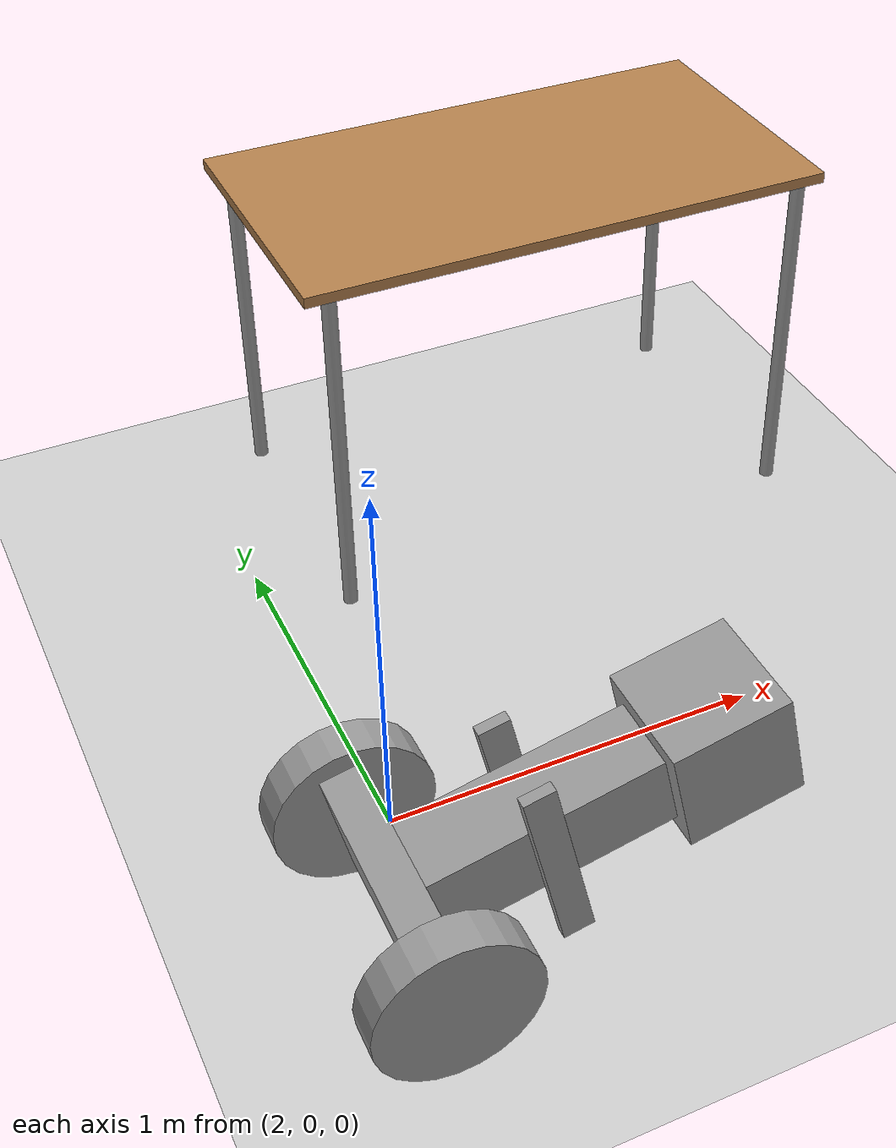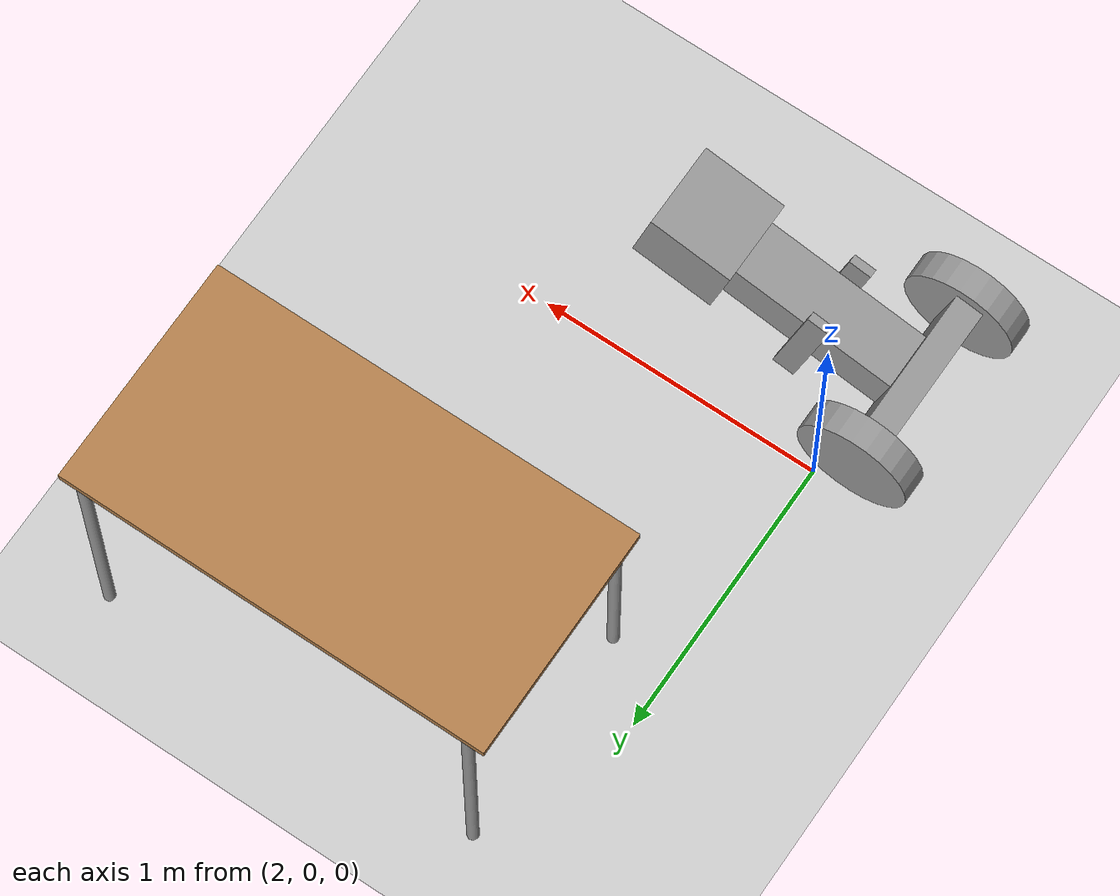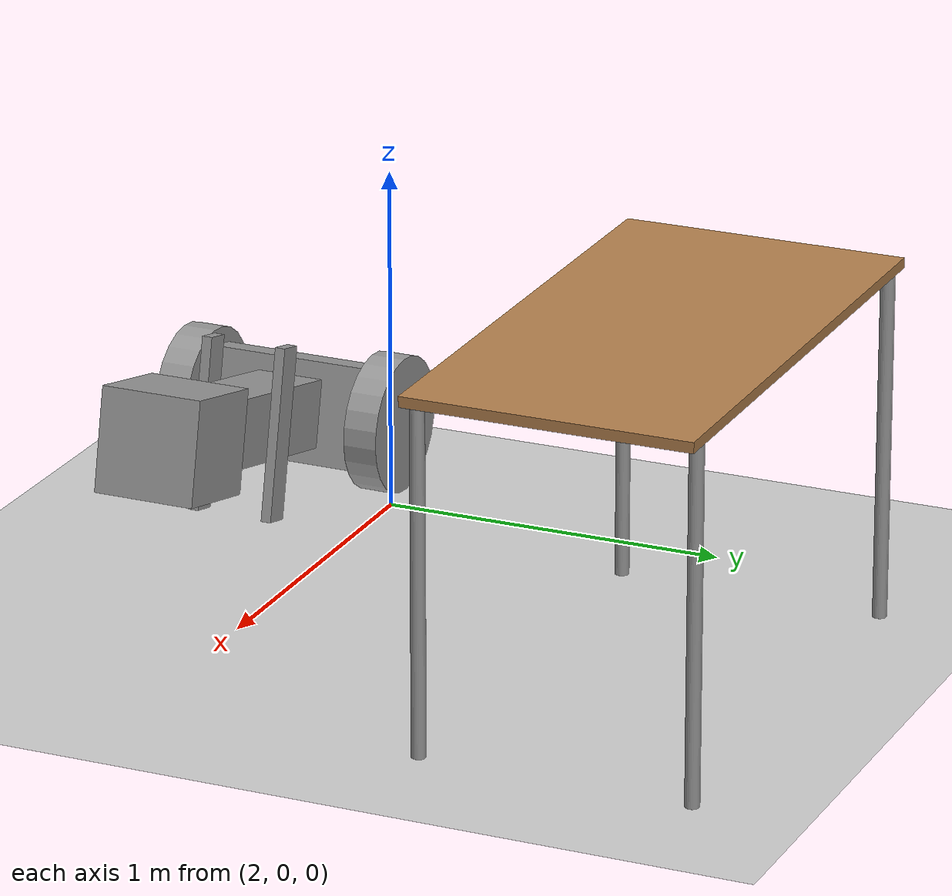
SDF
<sdf version="1.6">
 <world name="default">
  <model name="ground_plane">
   <static>1</static>
   <link name="link">
    <collision name="collision">
     <geometry><plane><normal>0 0 1</normal><size>100 100</size></plane></geometry>
     <surface><friction><ode><mu>100</mu><mu2>50</mu2></ode></friction></surface>
    </collision>
    <visual name="visual">
     <cast_shadows>0</cast_shadows>
     <geometry><plane><normal>0 0 1</normal><size>100 100</size></plane></geometry>
     <material>
      <script><uri>file://media/materials/scripts/gazebo.material</uri><name>Gazebo/Grey</name></script>
     </material>
    </visual>
   </link>
  </model>
  <model name="robot_0">
   <link name="link_0">
    <pose>1.55233 -0.934021 0.2 0 -0 0</pose>
    <inertial>
     <mass>1</mass>
     <inertia>
      <ixx>0.166667</ixx>
      <ixy>0</ixy>
      <ixz>0</ixz>
      <iyy>0.166667</iyy>
      <iyz>0</iyz>
      <izz>0.166667</izz>
     </inertia>
    </inertial>
    <visual name="visual">
     <geometry><box><size>0.3 0.5 0.1</size></box></geometry>
     <material>
      <lighting>1</lighting>
      <script><uri>file://media/materials/scripts/gazebo.material</uri><name>Gazebo/Grey</name></script>
      <shader type="pixel"><normal_map>__default__</normal_map></shader>
      <ambient>0.3 0.3 0.3 1</ambient>
      <diffuse>0.7 0.7 0.7 1</diffuse>
      <specular>0.01 0.01 0.01 1</specular>
      <emissive>0 0 0 1</emissive>
     </material>
    </visual>
    <collision name="collision">
     <geometry><box><size>0.3 0.5 0.1</size></box></geometry>
     <surface>
      <friction>
       <ode><mu>1</mu><mu2>1</mu2><fdir1>0 0 0</fdir1><slip1>0</slip1><slip2>0</slip2></ode>
       <torsional>
        <coefficient>1</coefficient>
        <patch_radius>0</patch_radius>
        <surface_radius>0</surface_radius>
        <use_patch_radius>1</use_patch_radius>
        <ode><slip>0</slip></ode>
       </torsional>
      </friction>
      <bounce><restitution_coefficient>0</restitution_coefficient><threshold>1e+06</threshold></bounce>
      <contact>
       <collide_without_contact>0</collide_without_contact>
       <collide_without_contact_bitmask>1</collide_without_contact_bitmask>
       <collide_bitmask>1</collide_bitmask>
       <ode>
        <soft_cfm>0</soft_cfm>
        <soft_erp>0.2</soft_erp>
        <kp>1e+13</kp>
        <kd>1</kd>
        <max_vel>0.01</max_vel>
        <min_depth>0</min_depth>
       </ode>
       <bullet>
        <split_impulse>1</split_impulse>
        <split_impulse_penetration_threshold>-0.01</split_impulse_penetration_threshold>
        <soft_cfm>0</soft_cfm>
        <soft_erp>0.2</soft_erp>
        <kp>1e+13</kp>
        <kd>1</kd>
       </bullet>
      </contact>
     </surface>
    </collision>
   </link>
   <link name="link_1">
    <pose>1.55233 -1.23404 0.2 1.5707 -0 0</pose>
    <inertial>
     <mass>1</mass>
     <inertia><ixx>0.145833</ixx><ixy>0</ixy><ixz>0</ixz><iyy>0.145833</iyy><iyz>0</iyz><izz>0.125</izz></inertia>
    </inertial>
    <visual name="visual">
     <geometry><cylinder><radius>0.2</radius><length>0.1</length></cylinder></geometry>
     <material>
      <lighting>1</lighting>
      <script><uri>file://media/materials/scripts/gazebo.material</uri><name>Gazebo/Grey</name></script>
      <shader type="pixel"><normal_map>__default__</normal_map></shader>
      <ambient>0.3 0.3 0.3 1</ambient>
      <diffuse>0.7 0.7 0.7 1</diffuse>
      <specular>0.01 0.01 0.01 1</specular>
      <emissive>0 0 0 1</emissive>
     </material>
    </visual>
    <collision name="collision">
     <geometry><cylinder><radius>0.2</radius><length>0.1</length></cylinder></geometry>
     <surface>
      <friction>
       <ode><mu>1</mu><mu2>1</mu2><fdir1>0 0 0</fdir1><slip1>0</slip1><slip2>0</slip2></ode>
       <torsional>
        <coefficient>1</coefficient>
        <patch_radius>0</patch_radius>
        <surface_radius>0</surface_radius>
        <use_patch_radius>1</use_patch_radius>
        <ode><slip>0</slip></ode>
       </torsional>
      </friction>
      <bounce><restitution_coefficient>0</restitution_coefficient><threshold>1e+06</threshold></bounce>
      <contact>
       <collide_without_contact>0</collide_without_contact>
       <collide_without_contact_bitmask>1</collide_without_contact_bitmask>
       <collide_bitmask>1</collide_bitmask>
       <ode>
        <soft_cfm>0</soft_cfm>
        <soft_erp>0.2</soft_erp>
        <kp>1e+13</kp>
        <kd>1</kd>
        <max_vel>0.01</max_vel>
        <min_depth>0</min_depth>
       </ode>
       <bullet>
        <split_impulse>1</split_impulse>
        <split_impulse_penetration_threshold>-0.01</split_impulse_penetration_threshold>
        <soft_cfm>0</soft_cfm>
        <soft_erp>0.2</soft_erp>
        <kp>1e+13</kp>
        <kd>1</kd>
       </bullet>
      </contact>
     </surface>
    </collision>
   </link>
   <link name="link_1_clone">
    <pose>1.55233 -0.634002 0.2 1.5707 -0 0</pose>
    <inertial>
     <mass>1</mass>
     <inertia><ixx>0.145833</ixx><ixy>0</ixy><ixz>0</ixz><iyy>0.145833</iyy><iyz>0</iyz><izz>0.125</izz></inertia>
    </inertial>
    <visual name="visual">
     <geometry><cylinder><radius>0.2</radius><length>0.1</length></cylinder></geometry>
     <material>
      <lighting>1</lighting>
      <script><uri>file://media/materials/scripts/gazebo.material</uri><name>Gazebo/Grey</name></script>
      <shader type="pixel"><normal_map>__default__</normal_map></shader>
      <ambient>0.3 0.3 0.3 1</ambient>
      <diffuse>0.7 0.7 0.7 1</diffuse>
      <specular>0.01 0.01 0.01 1</specular>
      <emissive>0 0 0 1</emissive>
     </material>
    </visual>
    <collision name="collision">
     <geometry><cylinder><radius>0.2</radius><length>0.1</length></cylinder></geometry>
     <surface>
      <friction>
       <ode><mu>1</mu><mu2>1</mu2><fdir1>0 0 0</fdir1><slip1>0</slip1><slip2>0</slip2></ode>
       <torsional>
        <coefficient>1</coefficient>
        <patch_radius>0</patch_radius>
        <surface_radius>0</surface_radius>
        <use_patch_radius>1</use_patch_radius>
        <ode><slip>0</slip></ode>
       </torsional>
      </friction>
      <bounce><restitution_coefficient>0</restitution_coefficient><threshold>1e+06</threshold></bounce>
      <contact>
       <collide_without_contact>0</collide_without_contact>
       <collide_without_contact_bitmask>1</collide_without_contact_bitmask>
       <collide_bitmask>1</collide_bitmask>
       <ode>
        <soft_cfm>0</soft_cfm>
        <soft_erp>0.2</soft_erp>
        <kp>1e+13</kp>
        <kd>1</kd>
        <max_vel>0.01</max_vel>
        <min_depth>0</min_depth>
       </ode>
       <bullet>
        <split_impulse>1</split_impulse>
        <split_impulse_penetration_threshold>-0.01</split_impulse_penetration_threshold>
        <soft_cfm>0</soft_cfm>
        <soft_erp>0.2</soft_erp>
        <kp>1e+13</kp>
        <kd>1</kd>
       </bullet>
      </contact>
     </surface>
    </collision>
   </link>
   <link name="link_2">
    <pose>1.55233 -0.934021 0.54 0 -0 0</pose>
    <inertial>
     <mass>1</mass>
     <inertia>
      <ixx>0.166667</ixx>
      <ixy>0</ixy>
      <ixz>0</ixz>
      <iyy>0.166667</iyy>
      <iyz>0</iyz>
      <izz>0.166667</izz>
     </inertia>
    </inertial>
    <visual name="visual">
     <geometry><box><size>0.2 0.2 0.6</size></box></geometry>
     <material>
      <lighting>1</lighting>
      <script><uri>file://media/materials/scripts/gazebo.material</uri><name>Gazebo/Grey</name></script>
      <shader type="pixel"><normal_map>__default__</normal_map></shader>
      <ambient>0.3 0.3 0.3 1</ambient>
      <diffuse>0.7 0.7 0.7 1</diffuse>
      <specular>0.01 0.01 0.01 1</specular>
      <emissive>0 0 0 1</emissive>
     </material>
    </visual>
    <collision name="collision">
     <geometry><box><size>0.2 0.2 0.6</size></box></geometry>
     <surface>
      <friction>
       <ode><mu>1</mu><mu2>1</mu2><fdir1>0 0 0</fdir1><slip1>0</slip1><slip2>0</slip2></ode>
       <torsional>
        <coefficient>1</coefficient>
        <patch_radius>0</patch_radius>
        <surface_radius>0</surface_radius>
        <use_patch_radius>1</use_patch_radius>
        <ode><slip>0</slip></ode>
       </torsional>
      </friction>
      <bounce><restitution_coefficient>0</restitution_coefficient><threshold>1e+06</threshold></bounce>
      <contact>
       <collide_without_contact>0</collide_without_contact>
       <collide_without_contact_bitmask>1</collide_without_contact_bitmask>
       <collide_bitmask>1</collide_bitmask>
       <ode>
        <soft_cfm>0</soft_cfm>
        <soft_erp>0.2</soft_erp>
        <kp>1e+13</kp>
        <kd>1</kd>
        <max_vel>0.01</max_vel>
        <min_depth>0</min_depth>
       </ode>
       <bullet>
        <split_impulse>1</split_impulse>
        <split_impulse_penetration_threshold>-0.01</split_impulse_penetration_threshold>
        <soft_cfm>0</soft_cfm>
        <soft_erp>0.2</soft_erp>
        <kp>1e+13</kp>
        <kd>1</kd>
       </bullet>
      </contact>
     </surface>
    </collision>
   </link>
   <link name="link_3">
    <pose>1.55233 -0.934021 0.99 0 -0 0</pose>
    <inertial>
     <mass>1</mass>
     <inertia>
      <ixx>0.166667</ixx>
      <ixy>0</ixy>
      <ixz>0</ixz>
      <iyy>0.166667</iyy>
      <iyz>0</iyz>
      <izz>0.166667</izz>
     </inertia>
    </inertial>
    <visual name="visual">
     <geometry><box><size>0.3 0.3 0.3</size></box></geometry>
     <material>
      <lighting>1</lighting>
      <script><uri>file://media/materials/scripts/gazebo.material</uri><name>Gazebo/Grey</name></script>
      <shader type="pixel"><normal_map>__default__</normal_map></shader>
      <ambient>0.3 0.3 0.3 1</ambient>
      <diffuse>0.7 0.7 0.7 1</diffuse>
      <specular>0.01 0.01 0.01 1</specular>
      <emissive>0 0 0 1</emissive>
     </material>
    </visual>
    <collision name="collision">
     <geometry><box><size>0.3 0.3 0.3</size></box></geometry>
     <surface>
      <friction>
       <ode><mu>1</mu><mu2>1</mu2><fdir1>0 0 0</fdir1><slip1>0</slip1><slip2>0</slip2></ode>
       <torsional>
        <coefficient>1</coefficient>
        <patch_radius>0</patch_radius>
        <surface_radius>0</surface_radius>
        <use_patch_radius>1</use_patch_radius>
        <ode><slip>0</slip></ode>
       </torsional>
      </friction>
      <bounce><restitution_coefficient>0</restitution_coefficient><threshold>1e+06</threshold></bounce>
      <contact>
       <collide_without_contact>0</collide_without_contact>
       <collide_without_contact_bitmask>1</collide_without_contact_bitmask>
       <collide_bitmask>1</collide_bitmask>
       <ode>
        <soft_cfm>0</soft_cfm>
        <soft_erp>0.2</soft_erp>
        <kp>1e+13</kp>
        <kd>1</kd>
        <max_vel>0.01</max_vel>
        <min_depth>0</min_depth>
       </ode>
       <bullet>
        <split_impulse>1</split_impulse>
        <split_impulse_penetration_threshold>-0.01</split_impulse_penetration_threshold>
        <soft_cfm>0</soft_cfm>
        <soft_erp>0.2</soft_erp>
        <kp>1e+13</kp>
        <kd>1</kd>
       </bullet>
      </contact>
     </surface>
    </collision>
   </link>
   <link name="link_4_clone">
    <pose>1.57233 -0.819719 0.54 0 -0 0</pose>
    <inertial>
     <mass>1</mass>
     <inertia>
      <ixx>0.166667</ixx>
      <ixy>0</ixy>
      <ixz>0</ixz>
      <iyy>0.166667</iyy>
      <iyz>0</iyz>
      <izz>0.166667</izz>
     </inertia>
    </inertial>
    <visual name="visual">
     <geometry><box><size>0.5 0.03 0.08</size></box></geometry>
     <material>
      <lighting>1</lighting>
      <script><uri>file://media/materials/scripts/gazebo.material</uri><name>Gazebo/Grey</name></script>
      <shader type="pixel"><normal_map>__default__</normal_map></shader>
      <ambient>0.3 0.3 0.3 1</ambient>
      <diffuse>0.7 0.7 0.7 1</diffuse>
      <specular>0.01 0.01 0.01 1</specular>
      <emissive>0 0 0 1</emissive>
     </material>
    </visual>
    <collision name="collision">
     <geometry><box><size>0.5 0.03 0.08</size></box></geometry>
     <surface>
      <friction>
       <ode><mu>1</mu><mu2>1</mu2><fdir1>0 0 0</fdir1><slip1>0</slip1><slip2>0</slip2></ode>
       <torsional>
        <coefficient>1</coefficient>
        <patch_radius>0</patch_radius>
        <surface_radius>0</surface_radius>
        <use_patch_radius>1</use_patch_radius>
        <ode><slip>0</slip></ode>
       </torsional>
      </friction>
      <bounce><restitution_coefficient>0</restitution_coefficient><threshold>1e+06</threshold></bounce>
      <contact>
       <collide_without_contact>0</collide_without_contact>
       <collide_without_contact_bitmask>1</collide_without_contact_bitmask>
       <collide_bitmask>1</collide_bitmask>
       <ode>
        <soft_cfm>0</soft_cfm>
        <soft_erp>0.2</soft_erp>
        <kp>1e+13</kp>
        <kd>1</kd>
        <max_vel>0.01</max_vel>
        <min_depth>0</min_depth>
       </ode>
       <bullet>
        <split_impulse>1</split_impulse>
        <split_impulse_penetration_threshold>-0.01</split_impulse_penetration_threshold>
        <soft_cfm>0</soft_cfm>
        <soft_erp>0.2</soft_erp>
        <kp>1e+13</kp>
        <kd>1</kd>
       </bullet>
      </contact>
     </surface>
    </collision>
   </link>
   <link name="link_4_clone_clone">
    <pose>1.57233 -1.04902 0.54 0 -0 0</pose>
    <inertial>
     <mass>1</mass>
     <inertia>
      <ixx>0.166667</ixx>
      <ixy>0</ixy>
      <ixz>0</ixz>
      <iyy>0.166667</iyy>
      <iyz>0</iyz>
      <izz>0.166667</izz>
     </inertia>
    </inertial>
    <visual name="visual">
     <geometry><box><size>0.5 0.03 0.08</size></box></geometry>
     <material>
      <lighting>1</lighting>
      <script><uri>file://media/materials/scripts/gazebo.material</uri><name>Gazebo/Grey</name></script>
      <shader type="pixel"><normal_map>__default__</normal_map></shader>
      <ambient>0.3 0.3 0.3 1</ambient>
      <diffuse>0.7 0.7 0.7 1</diffuse>
      <specular>0.01 0.01 0.01 1</specular>
      <emissive>0 0 0 1</emissive>
     </material>
    </visual>
    <collision name="collision">
     <geometry><box><size>0.5 0.03 0.08</size></box></geometry>
     <surface>
      <friction>
       <ode><mu>1</mu><mu2>1</mu2><fdir1>0 0 0</fdir1><slip1>0</slip1><slip2>0</slip2></ode>
       <torsional>
        <coefficient>1</coefficient>
        <patch_radius>0</patch_radius>
        <surface_radius>0</surface_radius>
        <use_patch_radius>1</use_patch_radius>
        <ode><slip>0</slip></ode>
       </torsional>
      </friction>
      <bounce><restitution_coefficient>0</restitution_coefficient><threshold>1e+06</threshold></bounce>
      <contact>
       <collide_without_contact>0</collide_without_contact>
       <collide_without_contact_bitmask>1</collide_without_contact_bitmask>
       <collide_bitmask>1</collide_bitmask>
       <ode>
        <soft_cfm>0</soft_cfm>
        <soft_erp>0.2</soft_erp>
        <kp>1e+13</kp>
        <kd>1</kd>
        <max_vel>0.01</max_vel>
        <min_depth>0</min_depth>
       </ode>
       <bullet>
        <split_impulse>1</split_impulse>
        <split_impulse_penetration_threshold>-0.01</split_impulse_penetration_threshold>
        <soft_cfm>0</soft_cfm>
        <soft_erp>0.2</soft_erp>
        <kp>1e+13</kp>
        <kd>1</kd>
       </bullet>
      </contact>
     </surface>
    </collision>
   </link>
   <joint name="link_0_JOINT_1" type="revolute">
    <parent>link_0</parent>
    <child>link_1</child>
    <axis>
     <xyz>1 0 0</xyz>
     <use_parent_model_frame>0</use_parent_model_frame>
     <limit>
      <lower>-1.79769e+308</lower>
      <upper>1.79769e+308</upper>
      <effort>-1</effort>
      <velocity>-1</velocity>
     </limit>
     <dynamics>
      <spring_reference>0</spring_reference>
      <spring_stiffness>0</spring_stiffness>
      <damping>0</damping>
     </dynamics>
    </axis>
    <physics>
     <ode><limit><cfm>0</cfm><erp>0.2</erp></limit><suspension><cfm>0</cfm><erp>0.2</erp></suspension></ode>
    </physics>
   </joint>
   <joint name="link_0_JOINT_2" type="revolute">
    <parent>link_0</parent>
    <child>link_1_clone</child>
    <axis>
     <xyz>1 0 0</xyz>
     <use_parent_model_frame>0</use_parent_model_frame>
     <limit>
      <lower>-1.79769e+308</lower>
      <upper>1.79769e+308</upper>
      <effort>-1</effort>
      <velocity>-1</velocity>
     </limit>
     <dynamics>
      <spring_reference>0</spring_reference>
      <spring_stiffness>0</spring_stiffness>
      <damping>0</damping>
     </dynamics>
    </axis>
    <physics>
     <ode><limit><cfm>0</cfm><erp>0.2</erp></limit><suspension><cfm>0</cfm><erp>0.2</erp></suspension></ode>
    </physics>
   </joint>
   <joint name="link_0_JOINT_6" type="fixed">
    <parent>link_0</parent>
    <child>link_2</child>
    <physics>
     <ode><limit><cfm>0</cfm><erp>0.2</erp></limit><suspension><cfm>0</cfm><erp>0.2</erp></suspension></ode>
    </physics>
   </joint>
   <joint name="link_2_JOINT_12" type="revolute">
    <parent>link_2</parent>
    <child>link_4_clone</child>
    <axis>
     <xyz>0 0 1</xyz>
     <use_parent_model_frame>0</use_parent_model_frame>
     <limit>
      <lower>-1.79769e+308</lower>
      <upper>1.79769e+308</upper>
      <effort>-1</effort>
      <velocity>-1</velocity>
     </limit>
     <dynamics>
      <spring_reference>0</spring_reference>
      <spring_stiffness>0</spring_stiffness>
      <damping>0</damping>
     </dynamics>
    </axis>
    <physics>
     <ode><limit><cfm>0</cfm><erp>0.2</erp></limit><suspension><cfm>0</cfm><erp>0.2</erp></suspension></ode>
    </physics>
   </joint>
   <joint name="link_2_JOINT_7" type="fixed">
    <parent>link_2</parent>
    <child>link_3</child>
    <physics>
     <ode><limit><cfm>0</cfm><erp>0.2</erp></limit><suspension><cfm>0</cfm><erp>0.2</erp></suspension></ode>
    </physics>
   </joint>
   <joint name="link_2_JOINT_8" type="revolute">
    <parent>link_2</parent>
    <child>link_4_clone_clone</child>
    <axis>
     <xyz>0 0 1</xyz>
     <use_parent_model_frame>0</use_parent_model_frame>
     <limit>
      <lower>-1.79769e+308</lower>
      <upper>1.79769e+308</upper>
      <effort>-1</effort>
      <velocity>-1</velocity>
     </limit>
     <dynamics>
      <spring_reference>0</spring_reference>
      <spring_stiffness>0</spring_stiffness>
      <damping>0</damping>
      <friction>0</friction>
     </dynamics>
    </axis>
    <physics>
     <ode><limit><cfm>0</cfm><erp>0.2</erp></limit><suspension><cfm>0</cfm><erp>0.2</erp></suspension></ode>
    </physics>
   </joint>
   <static>0</static>
   <pose>1.35826 0.576921 1.67426 1.7e-05 1.35643 -0.007806</pose>
  </model>
  <model name="table_14">
   <static>1</static>
   <link name="link">
    <collision name="surface">
     <pose>0 0 1 0 -0 0</pose>
     <geometry><box><size>1.5 0.8 0.03</size></box></geometry>
     <surface><friction><ode><mu>0.6</mu><mu2>0.6</mu2></ode></friction></surface>
    </collision>
    <visual name="visual1">
     <pose>0 0 1 0 -0 0</pose>
     <geometry><box><size>1.5 0.8 0.03</size></box></geometry>
     <material>
      <script><uri>file://media/materials/scripts/gazebo.material</uri><name>Gazebo/Wood</name></script>
     </material>
    </visual>
    <collision name="front_left_leg">
     <pose>0.68 0.38 0.5 0 -0 0</pose>
     <geometry><cylinder><radius>0.02</radius><length>1</length></cylinder></geometry>
    </collision>
    <visual name="front_left_leg">
     <pose>0.68 0.38 0.5 0 -0 0</pose>
     <geometry><cylinder><radius>0.02</radius><length>1</length></cylinder></geometry>
     <material>
      <script><uri>file://media/materials/scripts/gazebo.material</uri><name>Gazebo/Grey</name></script>
     </material>
    </visual>
    <collision name="front_right_leg">
     <pose>0.68 -0.38 0.5 0 -0 0</pose>
     <geometry><cylinder><radius>0.02</radius><length>1</length></cylinder></geometry>
    </collision>
    <visual name="front_right_leg">
     <pose>0.68 -0.38 0.5 0 -0 0</pose>
     <geometry><cylinder><radius>0.02</radius><length>1</length></cylinder></geometry>
     <material>
      <script><uri>file://media/materials/scripts/gazebo.material</uri><name>Gazebo/Grey</name></script>
     </material>
    </visual>
    <collision name="back_right_leg">
     <pose>-0.68 -0.38 0.5 0 -0 0</pose>
     <geometry><cylinder><radius>0.02</radius><length>1</length></cylinder></geometry>
    </collision>
    <visual name="back_right_leg">
     <pose>-0.68 -0.38 0.5 0 -0 0</pose>
     <geometry><cylinder><radius>0.02</radius><length>1</length></cylinder></geometry>
     <material>
      <script><uri>file://media/materials/scripts/gazebo.material</uri><name>Gazebo/Grey</name></script>
     </material>
    </visual>
    <collision name="back_left_leg">
     <pose>-0.68 0.38 0.5 0 -0 0</pose>
     <geometry><cylinder><radius>0.02</radius><length>1</length></cylinder></geometry>
    </collision>
    <visual name="back_left_leg">
     <pose>-0.68 0.38 0.5 0 -0 0</pose>
     <geometry><cylinder><radius>0.02</radius><length>1</length></cylinder></geometry>
     <material>
      <script><uri>file://media/materials/scripts/gazebo.material</uri><name>Gazebo/Grey</name></script>
     </material>
    </visual>
   </link>
   <pose>2.89006 1.18 0 0 -0 0</pose>
  </model>
 </world>
</sdf>
